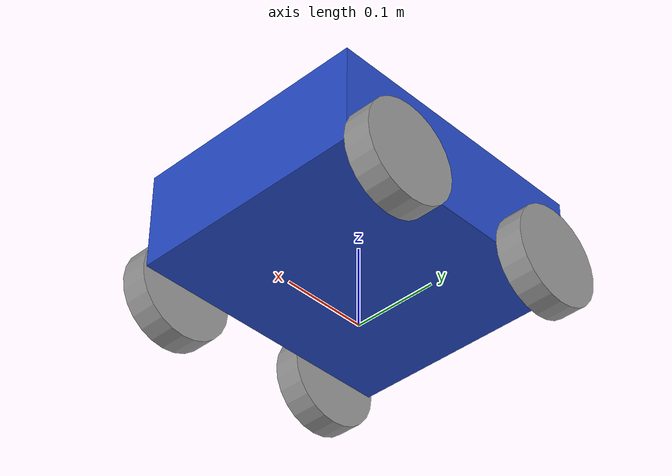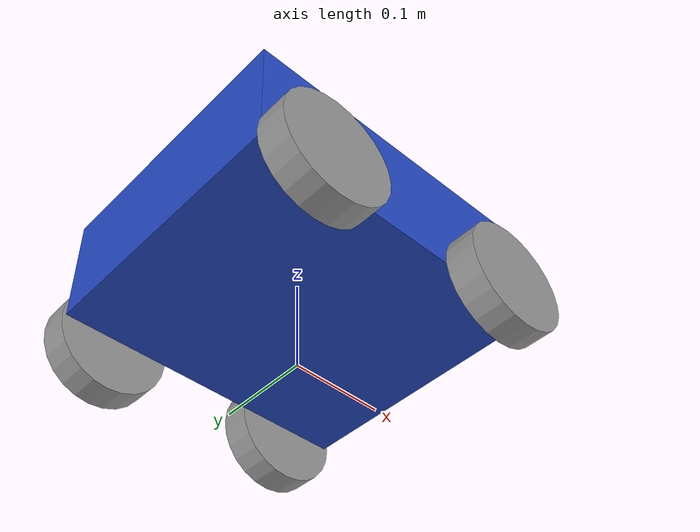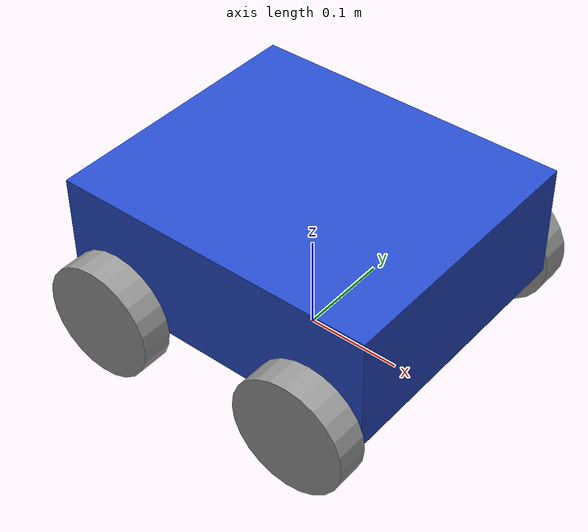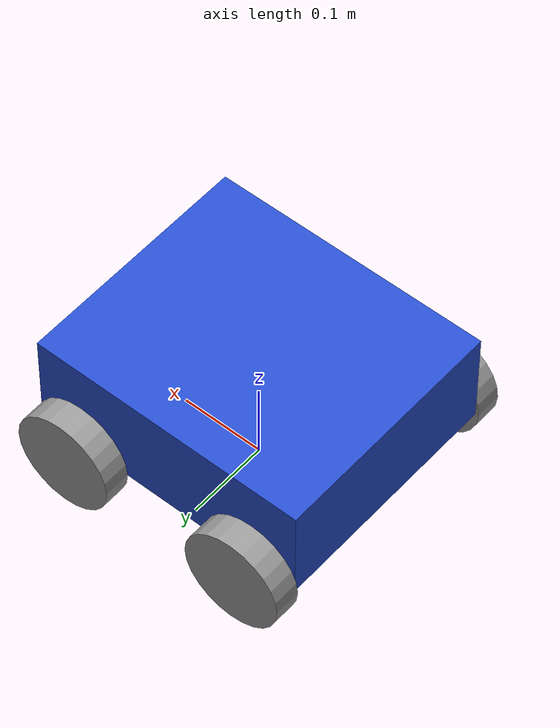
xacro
<?xml version="1.0"?>
<robot xmlns:xacro="http://www.ros.org/wiki/xacro">

    <xacro:property name="base_length" value="0.336" />
    <xacro:property name="base_width" value="0.288" />
    <xacro:property name="base_height" value="0.120" />
    <xacro:property name="wheel_radius" value="0.06" />
    <xacro:property name="wheel_length" value="0.032" />

    <link name="base_footprint" />

    <link name="base_link">
        <visual>
            <geometry>
                <box size="${base_length} ${base_width} ${base_height}" />
            </geometry>
            <origin xyz="0 0 ${base_height / 2.0}" rpy="0 0 0" />
            <material name="blue" />
        </visual>
        <collision>
            <geometry>
                <box size="${base_length} ${base_width} ${base_height}" />
            </geometry>
            <origin xyz="0 0 ${base_height / 2.0}" rpy="0 0 0" />
        </collision>
        <xacro:box_inertia m="5.0" x="${base_length}" y="${base_width}" z="${base_height}"
                            o_xyz="0 0 ${base_height / 2.0}" o_rpy="0 0 0" />
    </link>

    <link name="back_right_wheel_link">
        <visual>
            <geometry>
                <cylinder radius="${wheel_radius}" length="${wheel_length}" />
            </geometry>
            <origin xyz="0 0 0" rpy="${pi / 2.0} 0 0" />
            <material name="grey" />
        </visual>
        <collision>
            <geometry>
                <sphere radius="${wheel_radius}" />
            </geometry>
            <origin xyz="0 0 0" rpy="0 0 0" />
        </collision>
        <xacro:cylinder_inertia m="0.2" r="${wheel_radius}" l="${wheel_length}"
                                o_xyz="0 0 0" o_rpy="${pi / 2.0} 0 0" />
    </link>

    <link name="back_left_wheel_link">
        <visual>
            <geometry>
                <cylinder radius="${wheel_radius}" length="${wheel_length}" />
            </geometry>
            <origin xyz="0 0 0" rpy="${pi / 2.0} 0 0" />
            <material name="grey" />
        </visual>
        <collision>
            <geometry>
                <sphere radius="${wheel_radius}" />
            </geometry>
            <origin xyz="0 0 0" rpy="0 0 0" />
        </collision>
        <xacro:cylinder_inertia m="0.2" r="${wheel_radius}" l="${wheel_length}"
                                o_xyz="0 0 0" o_rpy="${pi / 2.0} 0 0" />
    </link>

    <link name="front_right_wheel_link">
        <visual>
            <geometry>
                <cylinder radius="${wheel_radius}" length="${wheel_length}" />
            </geometry>
            <origin xyz="0 0 0" rpy="${pi / 2.0} 0 0" />
            <material name="grey" />
        </visual>
        <collision>
            <geometry>
                <sphere radius="${wheel_radius}" />
            </geometry>
            <origin xyz="0 0 0" rpy="0 0 0" />
        </collision>
        <xacro:cylinder_inertia m="0.2" r="${wheel_radius}" l="${wheel_length}"
                                o_xyz="0 0 0" o_rpy="${pi / 2.0} 0 0" />
    </link>

    <link name="front_left_wheel_link">
        <visual>
            <geometry>
                <cylinder radius="${wheel_radius}" length="${wheel_length}" />
            </geometry>
            <origin xyz="0 0 0" rpy="${pi / 2.0} 0 0" />
            <material name="grey" />
        </visual>
        <collision>
            <geometry>
                <sphere radius="${wheel_radius}" />
            </geometry>
            <origin xyz="0 0 0" rpy="0 0 0" />
        </collision>
        <xacro:cylinder_inertia m="0.2" r="${wheel_radius}" l="${wheel_length}"
                                o_xyz="0 0 0" o_rpy="${pi / 2.0} 0 0" />
    </link>

    <joint name="base_joint" type="fixed">
        <parent link="base_footprint" />
        <child link="base_link" />
        <origin xyz="0 0 ${wheel_radius}" rpy="0 0 0"/>
    </joint>

    <joint name="back_right_wheel_joint" type="continuous">
        <parent link="base_link" />
        <child link="back_right_wheel_link" />
        <origin xyz="${-base_length / 3.0} ${-(base_width + wheel_length) / 2.0} 0" rpy="0 0 0" />
        <axis xyz="0 1 0" />
    </joint>

    <joint name="back_left_wheel_joint" type="continuous">
        <parent link="base_link" />
        <child link="back_left_wheel_link" />
        <origin xyz="${-base_length / 3.0} ${(base_width + wheel_length) / 2.0} 0" rpy="0 0 0" />
        <axis xyz="0 1 0" />
    </joint>

    <joint name="front_right_wheel_joint" type="continuous">
        <parent link="base_link" />
        <child link="front_right_wheel_link" />
        <origin xyz="${base_length / 3.0} ${-(base_width + wheel_length) / 2.0} 0" rpy="0 0 0" />
        <axis xyz="0 1 0" />
    </joint>

    <joint name="front_left_wheel_joint" type="continuous">
        <parent link="base_link" />
        <child link="front_left_wheel_link" />
        <origin xyz="${base_length / 3.0} ${(base_width + wheel_length) / 2.0} 0" rpy="0 0 0" />
        <axis xyz="0 1 0" />
    </joint>

</robot>
